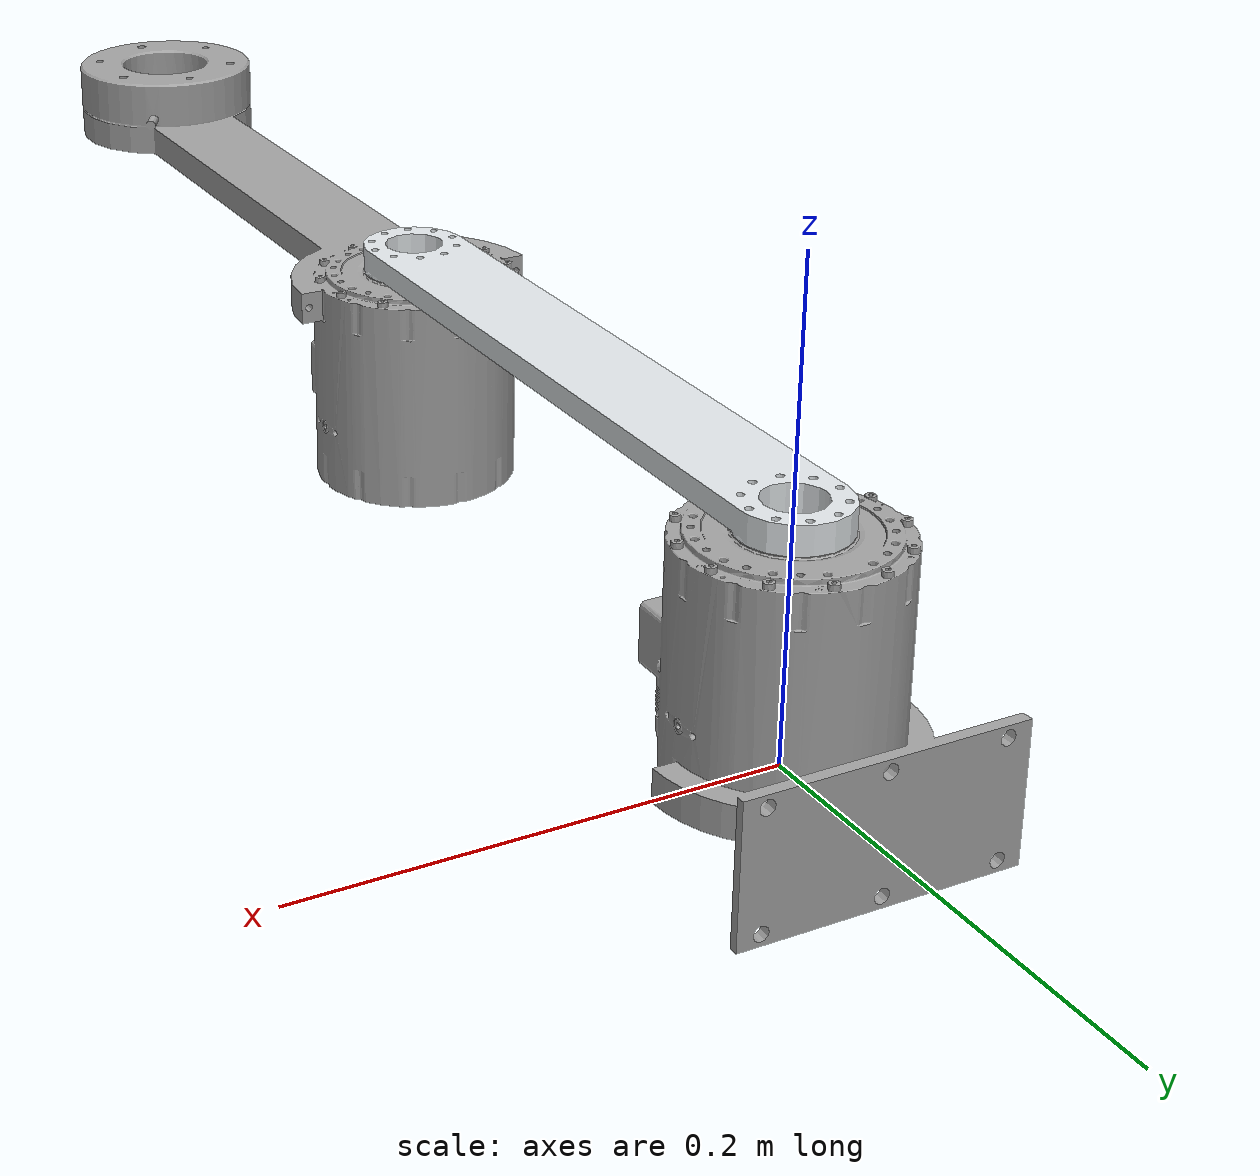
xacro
<?xml version="1.0" encoding="utf-8"?>
<robot name="two_link" xmlns:xacro="http://ros.org/wiki/xacro">

<xacro:include filename="$(find two_link)/robots/joints.urdf.xacro" />
<!-- simple dog joints macros configure the joint driver and param-->
  <xacro:two_link_joint joint_prefix="1"> </xacro:two_link_joint>
  <xacro:two_link_joint joint_prefix="1"> </xacro:two_link_joint>

  <link
    name="base_link">
    <inertial>
      <origin
        xyz="-1.9536E-08 0.0088431 0.037629"
        rpy="0 0 0" />
      <mass
        value="0.77887" />
      <inertia
        ixx="0.0015096"
        ixy="-1.0345E-08"
        ixz="-2.4176E-10"
        iyy="0.0011768"
        iyz="0.00024377"
        izz="0.0013264" />
    </inertial>
    <visual>
      <origin
        xyz="0 0 0"
        rpy="0 0 0" />
      <geometry>
        <mesh
          filename="package://two_link/meshes/base_link.STL" />
      </geometry>
      <material
        name="">
        <color
          rgba="0.64706 0.64706 0.64706 1" />
      </material>
    </visual>
    <collision>
      <origin
        xyz="0 0 0"
        rpy="0 0 0" />
      <geometry>
        <mesh
          filename="package://two_link/meshes/base_link.STL" />
      </geometry>
    </collision>
  </link>
  <link
    name="Link1">
    <inertial>
      <origin
        xyz="-4.1277E-15 -0.15 0.10285"
        rpy="0 0 0" />
      <mass
        value="0.38623" />
      <inertia
        ixx="0.0033546"
        ixy="-1.0318E-16"
        ixz="-1.8435E-21"
        iyy="7.0388E-05"
        iyz="-2.9513E-19"
        izz="0.0034178" />
    </inertial>
    <visual>
      <origin
        xyz="0 0 0"
        rpy="0 0 0" />
      <geometry>
        <mesh
          filename="package://two_link/meshes/Link1.STL" />
      </geometry>
      <material
        name="">
        <color
          rgba="0.89804 0.91765 0.92941 1" />
      </material>
    </visual>
    <collision>
      <origin
        xyz="0 0 0"
        rpy="0 0 0" />
      <geometry>
        <mesh
          filename="package://two_link/meshes/Link1.STL" />
      </geometry>
    </collision>
  </link>
  <joint
    name="joint1"
    type="revolute">
    <origin
      xyz="0 0 0"
      rpy="0 0 0" />
    <parent
      link="base_link" />
    <child
      link="Link1" />
    <axis
      xyz="0 0 1" />
    <limit
      lower="0"
      upper="0"
      effort="0"
      velocity="0" />
    <safety_controller
      k_velocity="0" />
  </joint>
  <link
    name="Link2">
    <inertial>
      <origin
        xyz="5.2551E-06 -0.37963 -0.045832"
        rpy="0 0 0" />
      <mass
        value="0.93375" />
      <inertia
        ixx="0.014681"
        ixy="8.6072E-07"
        ixz="-1.7615E-07"
        iyy="0.0014073"
        iyz="0.0022958"
        izz="0.014207" />
    </inertial>
    <visual>
      <origin
        xyz="0 0 0"
        rpy="0 0 0" />
      <geometry>
        <mesh
          filename="package://two_link/meshes/Link2.STL" />
      </geometry>
      <material
        name="">
        <color
          rgba="0.64706 0.64706 0.64706 1" />
      </material>
    </visual>
    <collision>
      <origin
        xyz="0 0 0"
        rpy="0 0 0" />
      <geometry>
        <mesh
          filename="package://two_link/meshes/Link2.STL" />
      </geometry>
    </collision>
  </link>
  <joint
    name="joint2"
    type="revolute">
    <origin
      xyz="0 0 0.10805"
      rpy="0 0 0" />
    <parent
      link="Link1" />
    <child
      link="Link2" />
    <axis
      xyz="0 0 1" />
    <limit
      lower="0"
      upper="0"
      effort="0"
      velocity="0" />
    <safety_controller
      k_velocity="0" />
  </joint>
</robot>
